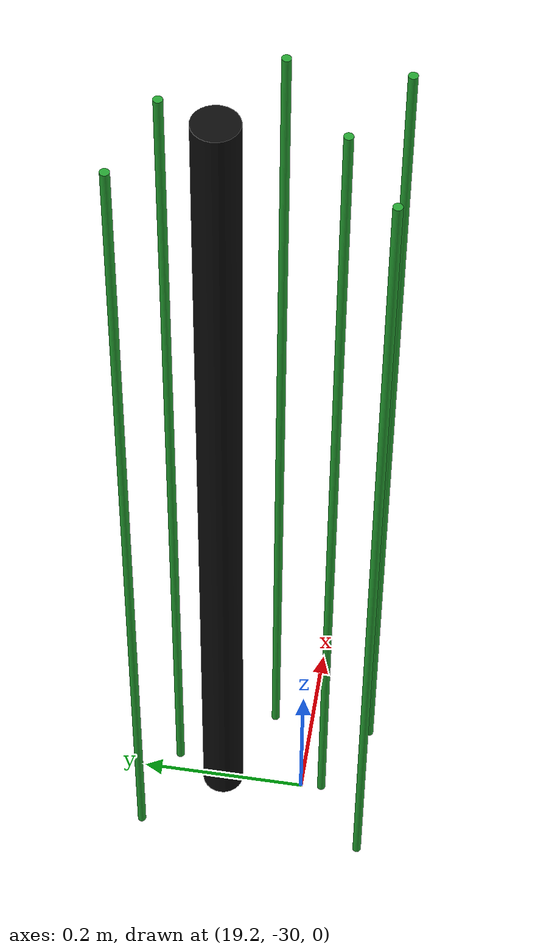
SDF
<sdf version="1.6">
 <world name="default">
  <model name="pole_33">
   <static>1</static>
   <pose>19.2 -29.9 0.575 0 -0 0</pose>
   <link name="link">
    <collision name="collision">
     <geometry><cylinder><length>1.15</length><radius>0.025</radius></cylinder></geometry>
    </collision>
    <visual name="visual">
     <geometry><cylinder><length>1.15</length><radius>0.025</radius></cylinder></geometry>
     <material>
      <script><uri>file://media/materials/scripts/gazebo.material</uri><name>Gazebo/Chrome</name></script>
      <shader type="vertex"><normal_map>__default__</normal_map></shader>
      <emissive>0.1 0.1 0.1 1</emissive>
      <specular>0.01 0.01 0.01 1</specular>
      <ambient>0.5 0.5 0.5 1</ambient>
      <diffuse>0.05 0.05 0.05 1</diffuse>
     </material>
    </visual>
   </link>
  </model>
  <model name="pole_27_clone_clone_232">
   <link name="link">
    <inertial>
     <mass>1</mass>
     <inertia><ixx>1</ixx><ixy>0</ixy><ixz>0</ixz><iyy>1</iyy><iyz>0</iyz><izz>1</izz></inertia>
    </inertial>
    <visual name="visual">
     <geometry><cylinder><length>1.15</length><radius>0.005</radius></cylinder></geometry>
     <material>
      <script><uri>file://media/materials/scripts/gazebo.material</uri><name>Gazebo/Green</name></script>
      <shader type="vertex"><normal_map>__default__</normal_map></shader>
      <emissive>0 0.1 0 1</emissive>
      <specular>0 0.01 0 1</specular>
      <ambient>0 0.5 0 1</ambient>
      <diffuse>0 0.05 0 1</diffuse>
     </material>
    </visual>
    <collision name="collision">
     <geometry><cylinder><radius>0.005</radius><length>1.15</length></cylinder></geometry>
     <surface>
      <friction>
       <ode><mu>1</mu><mu2>1</mu2><fdir1>0 0 0</fdir1><slip1>0</slip1><slip2>0</slip2></ode>
       <torsional>
        <coefficient>1</coefficient>
        <patch_radius>0</patch_radius>
        <surface_radius>0</surface_radius>
        <use_patch_radius>1</use_patch_radius>
        <ode><slip>0</slip></ode>
       </torsional>
      </friction>
      <bounce><restitution_coefficient>0</restitution_coefficient><threshold>1e+06</threshold></bounce>
      <contact>
       <collide_without_contact>0</collide_without_contact>
       <collide_without_contact_bitmask>1</collide_without_contact_bitmask>
       <collide_bitmask>1</collide_bitmask>
       <ode>
        <soft_cfm>0</soft_cfm>
        <soft_erp>0.2</soft_erp>
        <kp>1e+13</kp>
        <kd>1</kd>
        <max_vel>0.01</max_vel>
        <min_depth>0</min_depth>
       </ode>
       <bullet>
        <split_impulse>1</split_impulse>
        <split_impulse_penetration_threshold>-0.01</split_impulse_penetration_threshold>
        <soft_cfm>0</soft_cfm>
        <soft_erp>0.2</soft_erp>
        <kp>1e+13</kp>
        <kd>1</kd>
       </bullet>
      </contact>
     </surface>
    </collision>
   </link>
   <static>1</static>
   <pose>19.2981 -29.9522 0.575 0 -0 0</pose>
  </model>
  <model name="pole_27_clone_clone_235">
   <link name="link">
    <inertial>
     <mass>1</mass>
     <inertia><ixx>1</ixx><ixy>0</ixy><ixz>0</ixz><iyy>1</iyy><iyz>0</iyz><izz>1</izz></inertia>
    </inertial>
    <visual name="visual">
     <geometry><cylinder><length>1.15</length><radius>0.005</radius></cylinder></geometry>
     <material>
      <script><uri>file://media/materials/scripts/gazebo.material</uri><name>Gazebo/Green</name></script>
      <shader type="vertex"><normal_map>__default__</normal_map></shader>
      <emissive>0 0.1 0 1</emissive>
      <specular>0 0.01 0 1</specular>
      <ambient>0 0.5 0 1</ambient>
      <diffuse>0 0.05 0 1</diffuse>
     </material>
    </visual>
    <collision name="collision">
     <geometry><cylinder><radius>0.005</radius><length>1.15</length></cylinder></geometry>
     <surface>
      <friction>
       <ode><mu>1</mu><mu2>1</mu2><fdir1>0 0 0</fdir1><slip1>0</slip1><slip2>0</slip2></ode>
       <torsional>
        <coefficient>1</coefficient>
        <patch_radius>0</patch_radius>
        <surface_radius>0</surface_radius>
        <use_patch_radius>1</use_patch_radius>
        <ode><slip>0</slip></ode>
       </torsional>
      </friction>
      <bounce><restitution_coefficient>0</restitution_coefficient><threshold>1e+06</threshold></bounce>
      <contact>
       <collide_without_contact>0</collide_without_contact>
       <collide_without_contact_bitmask>1</collide_without_contact_bitmask>
       <collide_bitmask>1</collide_bitmask>
       <ode>
        <soft_cfm>0</soft_cfm>
        <soft_erp>0.2</soft_erp>
        <kp>1e+13</kp>
        <kd>1</kd>
        <max_vel>0.01</max_vel>
        <min_depth>0</min_depth>
       </ode>
       <bullet>
        <split_impulse>1</split_impulse>
        <split_impulse_penetration_threshold>-0.01</split_impulse_penetration_threshold>
        <soft_cfm>0</soft_cfm>
        <soft_erp>0.2</soft_erp>
        <kp>1e+13</kp>
        <kd>1</kd>
       </bullet>
      </contact>
     </surface>
    </collision>
   </link>
   <static>1</static>
   <pose>19.1216 -29.8096 0.575 0 -0 0</pose>
  </model>
  <model name="pole_27_clone_clone_238">
   <link name="link">
    <inertial>
     <mass>1</mass>
     <inertia><ixx>1</ixx><ixy>0</ixy><ixz>0</ixz><iyy>1</iyy><iyz>0</iyz><izz>1</izz></inertia>
    </inertial>
    <visual name="visual">
     <geometry><cylinder><length>1.15</length><radius>0.005</radius></cylinder></geometry>
     <material>
      <script><uri>file://media/materials/scripts/gazebo.material</uri><name>Gazebo/Green</name></script>
      <shader type="vertex"><normal_map>__default__</normal_map></shader>
      <emissive>0 0.1 0 1</emissive>
      <specular>0 0.01 0 1</specular>
      <ambient>0 0.5 0 1</ambient>
      <diffuse>0 0.05 0 1</diffuse>
     </material>
    </visual>
    <collision name="collision">
     <geometry><cylinder><radius>0.005</radius><length>1.15</length></cylinder></geometry>
     <surface>
      <friction>
       <ode><mu>1</mu><mu2>1</mu2><fdir1>0 0 0</fdir1><slip1>0</slip1><slip2>0</slip2></ode>
       <torsional>
        <coefficient>1</coefficient>
        <patch_radius>0</patch_radius>
        <surface_radius>0</surface_radius>
        <use_patch_radius>1</use_patch_radius>
        <ode><slip>0</slip></ode>
       </torsional>
      </friction>
      <bounce><restitution_coefficient>0</restitution_coefficient><threshold>1e+06</threshold></bounce>
      <contact>
       <collide_without_contact>0</collide_without_contact>
       <collide_without_contact_bitmask>1</collide_without_contact_bitmask>
       <collide_bitmask>1</collide_bitmask>
       <ode>
        <soft_cfm>0</soft_cfm>
        <soft_erp>0.2</soft_erp>
        <kp>1e+13</kp>
        <kd>1</kd>
        <max_vel>0.01</max_vel>
        <min_depth>0</min_depth>
       </ode>
       <bullet>
        <split_impulse>1</split_impulse>
        <split_impulse_penetration_threshold>-0.01</split_impulse_penetration_threshold>
        <soft_cfm>0</soft_cfm>
        <soft_erp>0.2</soft_erp>
        <kp>1e+13</kp>
        <kd>1</kd>
       </bullet>
      </contact>
     </surface>
    </collision>
   </link>
   <static>1</static>
   <pose>19.2938 -30.0745 0.575 0 -0 0</pose>
  </model>
  <model name="pole_27_clone_clone_239">
   <link name="link">
    <inertial>
     <mass>1</mass>
     <inertia><ixx>1</ixx><ixy>0</ixy><ixz>0</ixz><iyy>1</iyy><iyz>0</iyz><izz>1</izz></inertia>
    </inertial>
    <visual name="visual">
     <geometry><cylinder><length>1.15</length><radius>0.005</radius></cylinder></geometry>
     <material>
      <script><uri>file://media/materials/scripts/gazebo.material</uri><name>Gazebo/Green</name></script>
      <shader type="vertex"><normal_map>__default__</normal_map></shader>
      <emissive>0 0.1 0 1</emissive>
      <specular>0 0.01 0 1</specular>
      <ambient>0 0.5 0 1</ambient>
      <diffuse>0 0.05 0 1</diffuse>
     </material>
    </visual>
    <collision name="collision">
     <geometry><cylinder><radius>0.005</radius><length>1.15</length></cylinder></geometry>
     <surface>
      <friction>
       <ode><mu>1</mu><mu2>1</mu2><fdir1>0 0 0</fdir1><slip1>0</slip1><slip2>0</slip2></ode>
       <torsional>
        <coefficient>1</coefficient>
        <patch_radius>0</patch_radius>
        <surface_radius>0</surface_radius>
        <use_patch_radius>1</use_patch_radius>
        <ode><slip>0</slip></ode>
       </torsional>
      </friction>
      <bounce><restitution_coefficient>0</restitution_coefficient><threshold>1e+06</threshold></bounce>
      <contact>
       <collide_without_contact>0</collide_without_contact>
       <collide_without_contact_bitmask>1</collide_without_contact_bitmask>
       <collide_bitmask>1</collide_bitmask>
       <ode>
        <soft_cfm>0</soft_cfm>
        <soft_erp>0.2</soft_erp>
        <kp>1e+13</kp>
        <kd>1</kd>
        <max_vel>0.01</max_vel>
        <min_depth>0</min_depth>
       </ode>
       <bullet>
        <split_impulse>1</split_impulse>
        <split_impulse_penetration_threshold>-0.01</split_impulse_penetration_threshold>
        <soft_cfm>0</soft_cfm>
        <soft_erp>0.2</soft_erp>
        <kp>1e+13</kp>
        <kd>1</kd>
       </bullet>
      </contact>
     </surface>
    </collision>
   </link>
   <static>1</static>
   <pose>19.1212 -30.0818 0.575 0 -0 0</pose>
  </model>
  <model name="pole_27_clone_clone_240">
   <link name="link">
    <inertial>
     <mass>1</mass>
     <inertia><ixx>1</ixx><ixy>0</ixy><ixz>0</ixz><iyy>1</iyy><iyz>0</iyz><izz>1</izz></inertia>
    </inertial>
    <visual name="visual">
     <geometry><cylinder><length>1.15</length><radius>0.005</radius></cylinder></geometry>
     <material>
      <script><uri>file://media/materials/scripts/gazebo.material</uri><name>Gazebo/Green</name></script>
      <shader type="vertex"><normal_map>__default__</normal_map></shader>
      <emissive>0 0.1 0 1</emissive>
      <specular>0 0.01 0 1</specular>
      <ambient>0 0.5 0 1</ambient>
      <diffuse>0 0.05 0 1</diffuse>
     </material>
    </visual>
    <collision name="collision">
     <geometry><cylinder><radius>0.005</radius><length>1.15</length></cylinder></geometry>
     <surface>
      <friction>
       <ode><mu>1</mu><mu2>1</mu2><fdir1>0 0 0</fdir1><slip1>0</slip1><slip2>0</slip2></ode>
       <torsional>
        <coefficient>1</coefficient>
        <patch_radius>0</patch_radius>
        <surface_radius>0</surface_radius>
        <use_patch_radius>1</use_patch_radius>
        <ode><slip>0</slip></ode>
       </torsional>
      </friction>
      <bounce><restitution_coefficient>0</restitution_coefficient><threshold>1e+06</threshold></bounce>
      <contact>
       <collide_without_contact>0</collide_without_contact>
       <collide_without_contact_bitmask>1</collide_without_contact_bitmask>
       <collide_bitmask>1</collide_bitmask>
       <ode>
        <soft_cfm>0</soft_cfm>
        <soft_erp>0.2</soft_erp>
        <kp>1e+13</kp>
        <kd>1</kd>
        <max_vel>0.01</max_vel>
        <min_depth>0</min_depth>
       </ode>
       <bullet>
        <split_impulse>1</split_impulse>
        <split_impulse_penetration_threshold>-0.01</split_impulse_penetration_threshold>
        <soft_cfm>0</soft_cfm>
        <soft_erp>0.2</soft_erp>
        <kp>1e+13</kp>
        <kd>1</kd>
       </bullet>
      </contact>
     </surface>
    </collision>
   </link>
   <static>1</static>
   <pose>19.2037 -30.0252 0.575 0 -0 0</pose>
  </model>
  <model name="pole_27_clone_clone_241">
   <link name="link">
    <inertial>
     <mass>1</mass>
     <inertia><ixx>1</ixx><ixy>0</ixy><ixz>0</ixz><iyy>1</iyy><iyz>0</iyz><izz>1</izz></inertia>
    </inertial>
    <visual name="visual">
     <geometry><cylinder><length>1.15</length><radius>0.005</radius></cylinder></geometry>
     <material>
      <script><uri>file://media/materials/scripts/gazebo.material</uri><name>Gazebo/Green</name></script>
      <shader type="vertex"><normal_map>__default__</normal_map></shader>
      <emissive>0 0.1 0 1</emissive>
      <specular>0 0.01 0 1</specular>
      <ambient>0 0.5 0 1</ambient>
      <diffuse>0 0.05 0 1</diffuse>
     </material>
    </visual>
    <collision name="collision">
     <geometry><cylinder><radius>0.005</radius><length>1.15</length></cylinder></geometry>
     <surface>
      <friction>
       <ode><mu>1</mu><mu2>1</mu2><fdir1>0 0 0</fdir1><slip1>0</slip1><slip2>0</slip2></ode>
       <torsional>
        <coefficient>1</coefficient>
        <patch_radius>0</patch_radius>
        <surface_radius>0</surface_radius>
        <use_patch_radius>1</use_patch_radius>
        <ode><slip>0</slip></ode>
       </torsional>
      </friction>
      <bounce><restitution_coefficient>0</restitution_coefficient><threshold>1e+06</threshold></bounce>
      <contact>
       <collide_without_contact>0</collide_without_contact>
       <collide_without_contact_bitmask>1</collide_without_contact_bitmask>
       <collide_bitmask>1</collide_bitmask>
       <ode>
        <soft_cfm>0</soft_cfm>
        <soft_erp>0.2</soft_erp>
        <kp>1e+13</kp>
        <kd>1</kd>
        <max_vel>0.01</max_vel>
        <min_depth>0</min_depth>
       </ode>
       <bullet>
        <split_impulse>1</split_impulse>
        <split_impulse_penetration_threshold>-0.01</split_impulse_penetration_threshold>
        <soft_cfm>0</soft_cfm>
        <soft_erp>0.2</soft_erp>
        <kp>1e+13</kp>
        <kd>1</kd>
       </bullet>
      </contact>
     </surface>
    </collision>
   </link>
   <static>1</static>
   <pose>19.2233 -29.8409 0.575 0 -0 0</pose>
  </model>
 </world>
</sdf>
